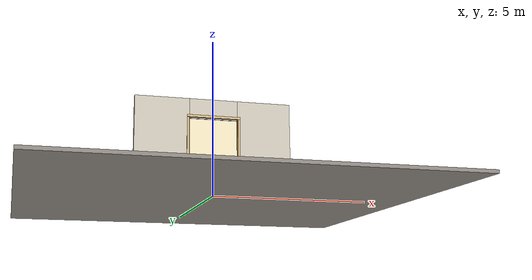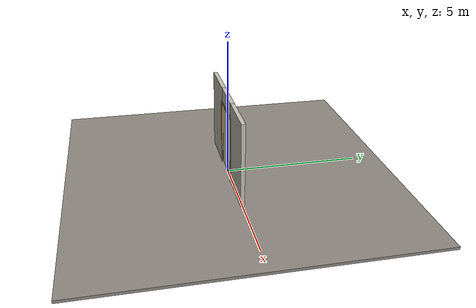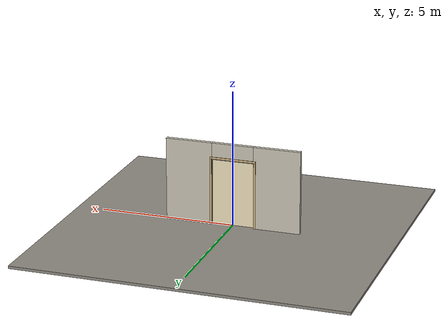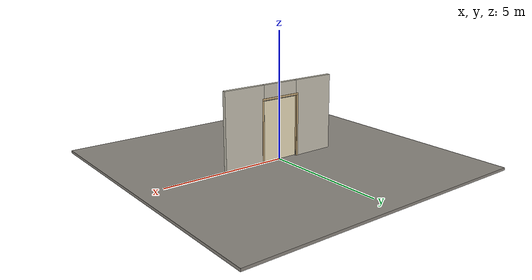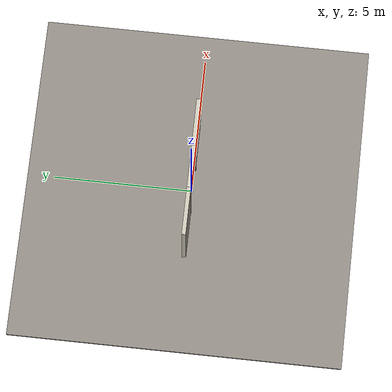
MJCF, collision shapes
<?xml version="1.0" ?>
<mujoco model="db0004_bifold_full">
  <compiler angle="radian" meshdir="../../hardware" texturedir="../../textures" autolimits="true" inertiafromgeom="false"/>
  <option timestep="0.002" integrator="implicitfast" cone="elliptic" impratio="10" noslip_iterations="3">
    <flag multiccd="enable"/>
  </option>
  <size memory="16M"/>
  <default>
    <geom condim="4" solref="0.005 1" solimp="0.95 0.99 0.001"/>
    <joint solreflimit="0.005 1" solimplimit="0.95 0.99 0.001"/>
    <tendon solreflimit="0.005 1"/>
    <equality solref="0.002 1"/>
  </default>
  <visual>
    <headlight ambient="0.4 0.4 0.4" diffuse="0.7 0.7 0.7" specular="0.2 0.2 0.2"/>
    <quality shadowsize="4096"/>
    <map znear="0.01" zfar="60"/>
  </visual>
  <asset>
    <mesh name="knob_13f7a2a65f" file="knob_13f7a2a65f.obj"/>
    <material name="mat_floor" rgba="0.55 0.53 0.5 1" specular="0.2" shininess="0.15" reflectance="0"/>
    <material name="mat_wall" rgba="0.78 0.76 0.7 1" specular="0.2" shininess="0.1" reflectance="0"/>
    <material name="mat_frame" rgba="0.82 0.7 0.5 1" specular="0.2" shininess="0.45" reflectance="0"/>
    <material name="mat_track" rgba="0.8 0.81 0.83 1" specular="0.8" shininess="0.6" reflectance="0.4"/>
    <material name="mat_hinge" rgba="0.65 0.66 0.68 1" specular="0.74" shininess="0.5" reflectance="0.36"/>
    <material name="mat_panel_0_0" rgba="0.93 0.88 0.74 1" specular="0.2" shininess="0.52" reflectance="0"/>
    <material name="mat_panel_0_0_louver" rgba="0.79 0.748 0.629 1" specular="0.2" shininess="0.4" reflectance="0"/>
    <material name="mat_panel_0_1" rgba="0.93 0.88 0.74 1" specular="0.2" shininess="0.52" reflectance="0"/>
    <material name="mat_panel_0_1_louver" rgba="0.79 0.748 0.629 1" specular="0.2" shininess="0.4" reflectance="0"/>
    <material name="mat_op_nickel_satin" rgba="0.72 0.7 0.66 1" specular="0.8" shininess="0.65" reflectance="0.4"/>
    <texture name="skybox" type="skybox" builtin="gradient" rgb1="0.6 0.7 0.85" rgb2="0.9 0.92 0.95" width="256" height="256"/>
  </asset>
  <worldbody>
    <light name="sun" pos="1.5 -2.5 4" dir="-0.3 0.5 -0.8" directional="true" diffuse="0.8 0.8 0.8" specular="0.3 0.3 0.3" castshadow="true"/>
    <light name="fill" pos="-1.5 2.5 3" dir="0.3 -0.5 -0.7" directional="true" diffuse="0.35 0.35 0.4" castshadow="false"/>
    <camera name="robot_view" pos="0 -2.926563 2.046937" xyaxes="1 0 0 0 0.26963 0.962964" fovy="52"/>
    <camera name="far_view" pos="0 2.926563 2.046937" xyaxes="-1 0 0 0 -0.26963 0.962964" fovy="52"/>
    <camera name="iso" pos="2.224187 -2.458313 2.515188" xyaxes="0.741536 0.670913 0 -0.242917 0.268487 0.932151" fovy="46"/>
    <camera name="detail_handle" pos="0.8935 -0.8475 1.28" xyaxes="0.97561 0.219512 0 -0.070934 0.315262 0.94635" fovy="38"/>
    <geom name="floor" type="box" size="6 6 0.05" pos="0 0 -0.05" material="mat_floor" group="0" contype="1" conaffinity="1" friction="0.8 0.005 0.0001" density="2400"/>
    <geom name="wall_left" type="box" size="0.86525 0.0725 1.5275" pos="-1.63475 0 1.5275" material="mat_wall" group="0" contype="1" conaffinity="1" friction="0.6 0.005 0.0001" density="800"/>
    <geom name="wall_right" type="box" size="0.86525 0.0725 1.5275" pos="1.63475 0 1.5275" material="mat_wall" group="0" contype="1" conaffinity="1" friction="0.6 0.005 0.0001" density="800"/>
    <geom name="wall_header" type="box" size="0.7695 0.0725 0.3" pos="0 0 2.755" material="mat_wall" group="0" contype="1" conaffinity="1" friction="0.6 0.005 0.0001" density="800"/>
    <geom name="jamb_hinge" type="box" size="0.0095 0.0725 1.2275" pos="-0.779 0 1.2275" material="mat_frame" group="0" contype="1" conaffinity="1" friction="0.6 0.005 0.0001" density="400"/>
    <geom name="jamb_strike" type="box" size="0.0095 0.0725 1.2275" pos="0.779 0 1.2275" material="mat_frame" group="0" contype="1" conaffinity="1" friction="0.6 0.005 0.0001" density="400"/>
    <geom name="stud_strike" type="box" size="0.015 0.0725 1.2275" pos="0.8035 0 1.2275" material="mat_wall" group="0" contype="1" conaffinity="1" friction="0.6 0.005 0.0001" density="500"/>
    <geom name="jamb_head" type="box" size="0.8035 0.0725 0.0095" pos="0.015 0 2.4645" material="mat_frame" group="0" contype="1" conaffinity="1" friction="0.6 0.005 0.0001" density="400"/>
    <geom name="head_stud" type="box" size="0.8035 0.0725 0.015" pos="0.015 0 2.489" material="mat_wall" group="0" contype="1" conaffinity="1" friction="0.6 0.005 0.0001" density="500"/>
    <geom name="casing_l_n" type="box" size="0.035 0.008 1.237" pos="-0.8185 -0.0805 1.2275" material="mat_frame" group="2" contype="0" conaffinity="0" density="400"/>
    <geom name="casing_r_n" type="box" size="0.035 0.008 1.237" pos="0.8185 -0.0805 1.2275" material="mat_frame" group="2" contype="0" conaffinity="0" density="400"/>
    <geom name="casing_h_n" type="box" size="0.8535 0.008 0.035" pos="0 -0.0805 2.504" material="mat_frame" group="2" contype="0" conaffinity="0" density="400"/>
    <geom name="casing_l_p" type="box" size="0.035 0.008 1.237" pos="-0.8185 0.0805 1.2275" material="mat_frame" group="2" contype="0" conaffinity="0" density="400"/>
    <geom name="casing_r_p" type="box" size="0.035 0.008 1.237" pos="0.8185 0.0805 1.2275" material="mat_frame" group="2" contype="0" conaffinity="0" density="400"/>
    <geom name="casing_h_p" type="box" size="0.8535 0.008 0.035" pos="0 0.0805 2.504" material="mat_frame" group="2" contype="0" conaffinity="0" density="400"/>
    <geom name="fold_track" type="box" size="0.7695 0.02 0.015" pos="0 0 2.44" material="mat_track" group="1" contype="0" conaffinity="0" density="2700"/>
    <site name="approach_point" pos="0 -1.5 0" quat="1 0 0 0" size="0.05" rgba="0.2 0.9 0.2 0.5" group="4"/>
    <site name="goal_point" pos="0 1.5 0" quat="1 0 0 0" size="0.05" rgba="0.2 0.9 0.2 0.5" group="4"/>
    <site name="door_plane_center" pos="0 0 1.2275" quat="1 0 0 0" size="0.02" rgba="0.2 0.9 0.2 0.5" group="4"/>
    <body name="panel_0_0" pos="-0.7695 0 0">
      <inertial pos="0.383534 0 1.222843" mass="14.037347" quat="0.500564 0.500564 0.499435 -0.499435" diaginertia="0.664033978 6.77029384 7.431467767"/>
      <joint name="panel_0_0_hinge" type="hinge" axis="0 0 -1" pos="0.035 0 0" limited="true" range="0 1.48353" damping="0.884535" frictionloss="2.611303" armature="0.02"/>
      <geom name="panel_0_0_slab" type="box" size="0.375645 0.0175 1.2" pos="0.384355 0 1.22" material="mat_panel_0_0" group="0" contype="1" conaffinity="1" friction="0.35 0.005 0.0001" density="1"/>
      <geom name="panel_0_0_louver_0" type="box" size="0.285645 0.002 0.02646" pos="0.384355 0 0.3092" quat="0.953717 0.300706 0 0" material="mat_panel_0_0_louver" group="1" contype="0" conaffinity="0" density="1"/>
      <geom name="panel_0_0_louver_1" type="box" size="0.285645 0.002 0.02646" pos="0.384355 0 0.3596" quat="0.953717 0.300706 0 0" material="mat_panel_0_0_louver" group="1" contype="0" conaffinity="0" density="1"/>
      <geom name="panel_0_0_louver_2" type="box" size="0.285645 0.002 0.02646" pos="0.384355 0 0.41" quat="0.953717 0.300706 0 0" material="mat_panel_0_0_louver" group="1" contype="0" conaffinity="0" density="1"/>
      <geom name="panel_0_0_louver_3" type="box" size="0.285645 0.002 0.02646" pos="0.384355 0 0.4604" quat="0.953717 0.300706 0 0" material="mat_panel_0_0_louver" group="1" contype="0" conaffinity="0" density="1"/>
      <geom name="panel_0_0_louver_4" type="box" size="0.285645 0.002 0.02646" pos="0.384355 0 0.5108" quat="0.953717 0.300706 0 0" material="mat_panel_0_0_louver" group="1" contype="0" conaffinity="0" density="1"/>
      <geom name="panel_0_0_louver_5" type="box" size="0.285645 0.002 0.02646" pos="0.384355 0 0.5612" quat="0.953717 0.300706 0 0" material="mat_panel_0_0_louver" group="1" contype="0" conaffinity="0" density="1"/>
      <geom name="panel_0_0_louver_6" type="box" size="0.285645 0.002 0.02646" pos="0.384355 0 0.6116" quat="0.953717 0.300706 0 0" material="mat_panel_0_0_louver" group="1" contype="0" conaffinity="0" density="1"/>
      <geom name="panel_0_0_louver_7" type="box" size="0.285645 0.002 0.02646" pos="0.384355 0 0.662" quat="0.953717 0.300706 0 0" material="mat_panel_0_0_louver" group="1" contype="0" conaffinity="0" density="1"/>
      <geom name="panel_0_0_louver_8" type="box" size="0.285645 0.002 0.02646" pos="0.384355 0 0.7124" quat="0.953717 0.300706 0 0" material="mat_panel_0_0_louver" group="1" contype="0" conaffinity="0" density="1"/>
      <geom name="panel_0_0_louver_9" type="box" size="0.285645 0.002 0.02646" pos="0.384355 0 0.7628" quat="0.953717 0.300706 0 0" material="mat_panel_0_0_louver" group="1" contype="0" conaffinity="0" density="1"/>
      <geom name="panel_0_0_louver_10" type="box" size="0.285645 0.002 0.02646" pos="0.384355 0 0.8132" quat="0.953717 0.300706 0 0" material="mat_panel_0_0_louver" group="1" contype="0" conaffinity="0" density="1"/>
      <geom name="panel_0_0_louver_11" type="box" size="0.285645 0.002 0.02646" pos="0.384355 0 0.8636" quat="0.953717 0.300706 0 0" material="mat_panel_0_0_louver" group="1" contype="0" conaffinity="0" density="1"/>
      <geom name="panel_0_0_louver_12" type="box" size="0.285645 0.002 0.02646" pos="0.384355 0 0.914" quat="0.953717 0.300706 0 0" material="mat_panel_0_0_louver" group="1" contype="0" conaffinity="0" density="1"/>
      <geom name="panel_0_0_louver_13" type="box" size="0.285645 0.002 0.02646" pos="0.384355 0 0.9644" quat="0.953717 0.300706 0 0" material="mat_panel_0_0_louver" group="1" contype="0" conaffinity="0" density="1"/>
      <geom name="panel_0_0_louver_14" type="box" size="0.285645 0.002 0.02646" pos="0.384355 0 1.0148" quat="0.953717 0.300706 0 0" material="mat_panel_0_0_louver" group="1" contype="0" conaffinity="0" density="1"/>
      <geom name="panel_0_0_louver_15" type="box" size="0.285645 0.002 0.02646" pos="0.384355 0 1.0652" quat="0.953717 0.300706 0 0" material="mat_panel_0_0_louver" group="1" contype="0" conaffinity="0" density="1"/>
      <geom name="panel_0_0_louver_16" type="box" size="0.285645 0.002 0.02646" pos="0.384355 0 1.1156" quat="0.953717 0.300706 0 0" material="mat_panel_0_0_louver" group="1" contype="0" conaffinity="0" density="1"/>
      <geom name="panel_0_0_louver_17" type="box" size="0.285645 0.002 0.02646" pos="0.384355 0 1.166" quat="0.953717 0.300706 0 0" material="mat_panel_0_0_louver" group="1" contype="0" conaffinity="0" density="1"/>
      <geom name="panel_0_0_louver_18" type="box" size="0.285645 0.002 0.02646" pos="0.384355 0 1.2164" quat="0.953717 0.300706 0 0" material="mat_panel_0_0_louver" group="1" contype="0" conaffinity="0" density="1"/>
      <geom name="panel_0_0_louver_19" type="box" size="0.285645 0.002 0.02646" pos="0.384355 0 1.2668" quat="0.953717 0.300706 0 0" material="mat_panel_0_0_louver" group="1" contype="0" conaffinity="0" density="1"/>
      <geom name="panel_0_0_louver_20" type="box" size="0.285645 0.002 0.02646" pos="0.384355 0 1.3172" quat="0.953717 0.300706 0 0" material="mat_panel_0_0_louver" group="1" contype="0" conaffinity="0" density="1"/>
      <geom name="panel_0_0_louver_21" type="box" size="0.285645 0.002 0.02646" pos="0.384355 0 1.3676" quat="0.953717 0.300706 0 0" material="mat_panel_0_0_louver" group="1" contype="0" conaffinity="0" density="1"/>
      <geom name="panel_0_0_louver_22" type="box" size="0.285645 0.002 0.02646" pos="0.384355 0 1.418" quat="0.953717 0.300706 0 0" material="mat_panel_0_0_louver" group="1" contype="0" conaffinity="0" density="1"/>
      <geom name="panel_0_0_louver_23" type="box" size="0.285645 0.002 0.02646" pos="0.384355 0 1.4684" quat="0.953717 0.300706 0 0" material="mat_panel_0_0_louver" group="1" contype="0" conaffinity="0" density="1"/>
      <geom name="panel_0_0_louver_24" type="box" size="0.285645 0.002 0.02646" pos="0.384355 0 1.5188" quat="0.953717 0.300706 0 0" material="mat_panel_0_0_louver" group="1" contype="0" conaffinity="0" density="1"/>
      <geom name="panel_0_0_louver_25" type="box" size="0.285645 0.002 0.02646" pos="0.384355 0 1.5692" quat="0.953717 0.300706 0 0" material="mat_panel_0_0_louver" group="1" contype="0" conaffinity="0" density="1"/>
      <geom name="panel_0_0_louver_26" type="box" size="0.285645 0.002 0.02646" pos="0.384355 0 1.6196" quat="0.953717 0.300706 0 0" material="mat_panel_0_0_louver" group="1" contype="0" conaffinity="0" density="1"/>
      <geom name="panel_0_0_louver_27" type="box" size="0.285645 0.002 0.02646" pos="0.384355 0 1.67" quat="0.953717 0.300706 0 0" material="mat_panel_0_0_louver" group="1" contype="0" conaffinity="0" density="1"/>
      <geom name="panel_0_0_louver_28" type="box" size="0.285645 0.002 0.02646" pos="0.384355 0 1.7204" quat="0.953717 0.300706 0 0" material="mat_panel_0_0_louver" group="1" contype="0" conaffinity="0" density="1"/>
      <geom name="panel_0_0_louver_29" type="box" size="0.285645 0.002 0.02646" pos="0.384355 0 1.7708" quat="0.953717 0.300706 0 0" material="mat_panel_0_0_louver" group="1" contype="0" conaffinity="0" density="1"/>
      <geom name="panel_0_0_louver_30" type="box" size="0.285645 0.002 0.02646" pos="0.384355 0 1.8212" quat="0.953717 0.300706 0 0" material="mat_panel_0_0_louver" group="1" contype="0" conaffinity="0" density="1"/>
      <geom name="panel_0_0_louver_31" type="box" size="0.285645 0.002 0.02646" pos="0.384355 0 1.8716" quat="0.953717 0.300706 0 0" material="mat_panel_0_0_louver" group="1" contype="0" conaffinity="0" density="1"/>
      <geom name="panel_0_0_louver_32" type="box" size="0.285645 0.002 0.02646" pos="0.384355 0 1.922" quat="0.953717 0.300706 0 0" material="mat_panel_0_0_louver" group="1" contype="0" conaffinity="0" density="1"/>
      <geom name="panel_0_0_louver_33" type="box" size="0.285645 0.002 0.02646" pos="0.384355 0 1.9724" quat="0.953717 0.300706 0 0" material="mat_panel_0_0_louver" group="1" contype="0" conaffinity="0" density="1"/>
      <geom name="panel_0_0_louver_34" type="box" size="0.285645 0.002 0.02646" pos="0.384355 0 2.0228" quat="0.953717 0.300706 0 0" material="mat_panel_0_0_louver" group="1" contype="0" conaffinity="0" density="1"/>
      <geom name="panel_0_0_louver_35" type="box" size="0.285645 0.002 0.02646" pos="0.384355 0 2.0732" quat="0.953717 0.300706 0 0" material="mat_panel_0_0_louver" group="1" contype="0" conaffinity="0" density="1"/>
      <geom name="panel_0_0_louver_36" type="box" size="0.285645 0.002 0.02646" pos="0.384355 0 2.1236" quat="0.953717 0.300706 0 0" material="mat_panel_0_0_louver" group="1" contype="0" conaffinity="0" density="1"/>
      <geom name="panel_0_0_louver_37" type="box" size="0.285645 0.002 0.02646" pos="0.384355 0 2.174" quat="0.953717 0.300706 0 0" material="mat_panel_0_0_louver" group="1" contype="0" conaffinity="0" density="1"/>
      <geom name="panel_0_0_louver_38" type="box" size="0.285645 0.002 0.02646" pos="0.384355 0 2.2244" quat="0.953717 0.300706 0 0" material="mat_panel_0_0_louver" group="1" contype="0" conaffinity="0" density="1"/>
      <geom name="panel_0_0_louver_39" type="box" size="0.285645 0.002 0.02646" pos="0.384355 0 2.2748" quat="0.953717 0.300706 0 0" material="mat_panel_0_0_louver" group="1" contype="0" conaffinity="0" density="1"/>
      <geom name="panel_0_0_pivot_pin" type="cylinder" size="0.008 0.0105" pos="0.035 0 2.4205" material="mat_hinge" group="1" contype="0" conaffinity="0" density="7850"/>
      <body name="panel_0_1" pos="0.762 0 0">
        <inertial pos="0.094648 0.011039 1.197215" mass="14.416173" quat="0.492705 0.525852 0.47261 -0.507308" diaginertia="0.792889883 6.165267269 6.956984169"/>
        <joint name="panel_0_1_hinge" type="hinge" axis="0 0 -1" pos="0 0.0175 0" limited="true" range="-3.141593 0" damping="0.2" frictionloss="0.1" armature="0.005"/>
        <geom name="panel_0_1_slab" type="box" size="0.3845 0.0175 1.2" pos="0.3865 0 1.22" material="mat_panel_0_1" group="0" contype="1" conaffinity="1" friction="0.35 0.005 0.0001" density="1"/>
        <geom name="panel_0_1_louver_0" type="box" size="0.2945 0.002 0.02646" pos="0.3865 0 0.3092" quat="0.953717 0.300706 0 0" material="mat_panel_0_1_louver" group="1" contype="0" conaffinity="0" density="1"/>
        <geom name="panel_0_1_louver_1" type="box" size="0.2945 0.002 0.02646" pos="0.3865 0 0.3596" quat="0.953717 0.300706 0 0" material="mat_panel_0_1_louver" group="1" contype="0" conaffinity="0" density="1"/>
        <geom name="panel_0_1_louver_2" type="box" size="0.2945 0.002 0.02646" pos="0.3865 0 0.41" quat="0.953717 0.300706 0 0" material="mat_panel_0_1_louver" group="1" contype="0" conaffinity="0" density="1"/>
        <geom name="panel_0_1_louver_3" type="box" size="0.2945 0.002 0.02646" pos="0.3865 0 0.4604" quat="0.953717 0.300706 0 0" material="mat_panel_0_1_louver" group="1" contype="0" conaffinity="0" density="1"/>
        <geom name="panel_0_1_louver_4" type="box" size="0.2945 0.002 0.02646" pos="0.3865 0 0.5108" quat="0.953717 0.300706 0 0" material="mat_panel_0_1_louver" group="1" contype="0" conaffinity="0" density="1"/>
        <geom name="panel_0_1_louver_5" type="box" size="0.2945 0.002 0.02646" pos="0.3865 0 0.5612" quat="0.953717 0.300706 0 0" material="mat_panel_0_1_louver" group="1" contype="0" conaffinity="0" density="1"/>
        <geom name="panel_0_1_louver_6" type="box" size="0.2945 0.002 0.02646" pos="0.3865 0 0.6116" quat="0.953717 0.300706 0 0" material="mat_panel_0_1_louver" group="1" contype="0" conaffinity="0" density="1"/>
        <geom name="panel_0_1_louver_7" type="box" size="0.2945 0.002 0.02646" pos="0.3865 0 0.662" quat="0.953717 0.300706 0 0" material="mat_panel_0_1_louver" group="1" contype="0" conaffinity="0" density="1"/>
        <geom name="panel_0_1_louver_8" type="box" size="0.2945 0.002 0.02646" pos="0.3865 0 0.7124" quat="0.953717 0.300706 0 0" material="mat_panel_0_1_louver" group="1" contype="0" conaffinity="0" density="1"/>
        <geom name="panel_0_1_louver_9" type="box" size="0.2945 0.002 0.02646" pos="0.3865 0 0.7628" quat="0.953717 0.300706 0 0" material="mat_panel_0_1_louver" group="1" contype="0" conaffinity="0" density="1"/>
        <geom name="panel_0_1_louver_10" type="box" size="0.2945 0.002 0.02646" pos="0.3865 0 0.8132" quat="0.953717 0.300706 0 0" material="mat_panel_0_1_louver" group="1" contype="0" conaffinity="0" density="1"/>
        <geom name="panel_0_1_louver_11" type="box" size="0.2945 0.002 0.02646" pos="0.3865 0 0.8636" quat="0.953717 0.300706 0 0" material="mat_panel_0_1_louver" group="1" contype="0" conaffinity="0" density="1"/>
        <geom name="panel_0_1_louver_12" type="box" size="0.2945 0.002 0.02646" pos="0.3865 0 0.914" quat="0.953717 0.300706 0 0" material="mat_panel_0_1_louver" group="1" contype="0" conaffinity="0" density="1"/>
        <geom name="panel_0_1_louver_13" type="box" size="0.2945 0.002 0.02646" pos="0.3865 0 0.9644" quat="0.953717 0.300706 0 0" material="mat_panel_0_1_louver" group="1" contype="0" conaffinity="0" density="1"/>
        <geom name="panel_0_1_louver_14" type="box" size="0.2945 0.002 0.02646" pos="0.3865 0 1.0148" quat="0.953717 0.300706 0 0" material="mat_panel_0_1_louver" group="1" contype="0" conaffinity="0" density="1"/>
        <geom name="panel_0_1_louver_15" type="box" size="0.2945 0.002 0.02646" pos="0.3865 0 1.0652" quat="0.953717 0.300706 0 0" material="mat_panel_0_1_louver" group="1" contype="0" conaffinity="0" density="1"/>
        <geom name="panel_0_1_louver_16" type="box" size="0.2945 0.002 0.02646" pos="0.3865 0 1.1156" quat="0.953717 0.300706 0 0" material="mat_panel_0_1_louver" group="1" contype="0" conaffinity="0" density="1"/>
        <geom name="panel_0_1_louver_17" type="box" size="0.2945 0.002 0.02646" pos="0.3865 0 1.166" quat="0.953717 0.300706 0 0" material="mat_panel_0_1_louver" group="1" contype="0" conaffinity="0" density="1"/>
        <geom name="panel_0_1_louver_18" type="box" size="0.2945 0.002 0.02646" pos="0.3865 0 1.2164" quat="0.953717 0.300706 0 0" material="mat_panel_0_1_louver" group="1" contype="0" conaffinity="0" density="1"/>
        <geom name="panel_0_1_louver_19" type="box" size="0.2945 0.002 0.02646" pos="0.3865 0 1.2668" quat="0.953717 0.300706 0 0" material="mat_panel_0_1_louver" group="1" contype="0" conaffinity="0" density="1"/>
        <geom name="panel_0_1_louver_20" type="box" size="0.2945 0.002 0.02646" pos="0.3865 0 1.3172" quat="0.953717 0.300706 0 0" material="mat_panel_0_1_louver" group="1" contype="0" conaffinity="0" density="1"/>
        <geom name="panel_0_1_louver_21" type="box" size="0.2945 0.002 0.02646" pos="0.3865 0 1.3676" quat="0.953717 0.300706 0 0" material="mat_panel_0_1_louver" group="1" contype="0" conaffinity="0" density="1"/>
        <geom name="panel_0_1_louver_22" type="box" size="0.2945 0.002 0.02646" pos="0.3865 0 1.418" quat="0.953717 0.300706 0 0" material="mat_panel_0_1_louver" group="1" contype="0" conaffinity="0" density="1"/>
        <geom name="panel_0_1_louver_23" type="box" size="0.2945 0.002 0.02646" pos="0.3865 0 1.4684" quat="0.953717 0.300706 0 0" material="mat_panel_0_1_louver" group="1" contype="0" conaffinity="0" density="1"/>
        <geom name="panel_0_1_louver_24" type="box" size="0.2945 0.002 0.02646" pos="0.3865 0 1.5188" quat="0.953717 0.300706 0 0" material="mat_panel_0_1_louver" group="1" contype="0" conaffinity="0" density="1"/>
        <geom name="panel_0_1_louver_25" type="box" size="0.2945 0.002 0.02646" pos="0.3865 0 1.5692" quat="0.953717 0.300706 0 0" material="mat_panel_0_1_louver" group="1" contype="0" conaffinity="0" density="1"/>
        <geom name="panel_0_1_louver_26" type="box" size="0.2945 0.002 0.02646" pos="0.3865 0 1.6196" quat="0.953717 0.300706 0 0" material="mat_panel_0_1_louver" group="1" contype="0" conaffinity="0" density="1"/>
        <geom name="panel_0_1_louver_27" type="box" size="0.2945 0.002 0.02646" pos="0.3865 0 1.67" quat="0.953717 0.300706 0 0" material="mat_panel_0_1_louver" group="1" contype="0" conaffinity="0" density="1"/>
        <geom name="panel_0_1_louver_28" type="box" size="0.2945 0.002 0.02646" pos="0.3865 0 1.7204" quat="0.953717 0.300706 0 0" material="mat_panel_0_1_louver" group="1" contype="0" conaffinity="0" density="1"/>
        <geom name="panel_0_1_louver_29" type="box" size="0.2945 0.002 0.02646" pos="0.3865 0 1.7708" quat="0.953717 0.300706 0 0" material="mat_panel_0_1_louver" group="1" contype="0" conaffinity="0" density="1"/>
        <geom name="panel_0_1_louver_30" type="box" size="0.2945 0.002 0.02646" pos="0.3865 0 1.8212" quat="0.953717 0.300706 0 0" material="mat_panel_0_1_louver" group="1" contype="0" conaffinity="0" density="1"/>
        <geom name="panel_0_1_louver_31" type="box" size="0.2945 0.002 0.02646" pos="0.3865 0 1.8716" quat="0.953717 0.300706 0 0" material="mat_panel_0_1_louver" group="1" contype="0" conaffinity="0" density="1"/>
        <geom name="panel_0_1_louver_32" type="box" size="0.2945 0.002 0.02646" pos="0.3865 0 1.922" quat="0.953717 0.300706 0 0" material="mat_panel_0_1_louver" group="1" contype="0" conaffinity="0" density="1"/>
        <geom name="panel_0_1_louver_33" type="box" size="0.2945 0.002 0.02646" pos="0.3865 0 1.9724" quat="0.953717 0.300706 0 0" material="mat_panel_0_1_louver" group="1" contype="0" conaffinity="0" density="1"/>
        <geom name="panel_0_1_louver_34" type="box" size="0.2945 0.002 0.02646" pos="0.3865 0 2.0228" quat="0.953717 0.300706 0 0" material="mat_panel_0_1_louver" group="1" contype="0" conaffinity="0" density="1"/>
        <geom name="panel_0_1_louver_35" type="box" size="0.2945 0.002 0.02646" pos="0.3865 0 2.0732" quat="0.953717 0.300706 0 0" material="mat_panel_0_1_louver" group="1" contype="0" conaffinity="0" density="1"/>
        <geom name="panel_0_1_louver_36" type="box" size="0.2945 0.002 0.02646" pos="0.3865 0 2.1236" quat="0.953717 0.300706 0 0" material="mat_panel_0_1_louver" group="1" contype="0" conaffinity="0" density="1"/>
        <geom name="panel_0_1_louver_37" type="box" size="0.2945 0.002 0.02646" pos="0.3865 0 2.174" quat="0.953717 0.300706 0 0" material="mat_panel_0_1_louver" group="1" contype="0" conaffinity="0" density="1"/>
        <geom name="panel_0_1_louver_38" type="box" size="0.2945 0.002 0.02646" pos="0.3865 0 2.2244" quat="0.953717 0.300706 0 0" material="mat_panel_0_1_louver" group="1" contype="0" conaffinity="0" density="1"/>
        <geom name="panel_0_1_louver_39" type="box" size="0.2945 0.002 0.02646" pos="0.3865 0 2.2748" quat="0.953717 0.300706 0 0" material="mat_panel_0_1_louver" group="1" contype="0" conaffinity="0" density="1"/>
        <geom name="panel_0_1_knuckle" type="cylinder" size="0.0045 1.19" pos="0 0.0175 1.22" material="mat_hinge" group="1" contype="0" conaffinity="0" density="7850"/>
        <geom name="panel_0_1_knob" type="mesh" mesh="knob_13f7a2a65f" pos="0.721 -0.0175 1" quat="0.707107 0.707107 0 0" material="mat_op_nickel_satin" group="1" contype="0" conaffinity="0" density="3000"/>
        <geom name="panel_0_1_knob_col" type="sphere" size="0.016" pos="0.721 -0.0475 1" material="mat_op_nickel_satin" group="0" contype="1" conaffinity="1" friction="0.6 0.005 0.0001" density="3000"/>
        <geom name="panel_0_1_knob_rose" type="cylinder" size="0.022 0.005" pos="0.721 -0.0225 1" quat="0.707107 -0.707107 0 0" material="mat_op_nickel_satin" group="1" contype="0" conaffinity="0" density="3000"/>
        <site name="panel_0_1_grip" pos="0.721 -0.0475 1" quat="1 0 0 0" size="0.012" rgba="0.2 0.9 0.2 0.5" group="4"/>
      </body>
    </body>
  </worldbody>
  <equality>
    <joint name="panel_0_1_couple" joint1="panel_0_1_hinge" joint2="panel_0_0_hinge" polycoef="0 -2 0 0 0" active="true"/>
  </equality>
  <sensor>
    <jointpos name="panel_0_0_hinge_pos" joint="panel_0_0_hinge"/>
    <jointvel name="panel_0_0_hinge_vel" joint="panel_0_0_hinge"/>
    <jointpos name="panel_0_1_hinge_pos" joint="panel_0_1_hinge"/>
    <jointvel name="panel_0_1_hinge_vel" joint="panel_0_1_hinge"/>
  </sensor>
</mujoco>
